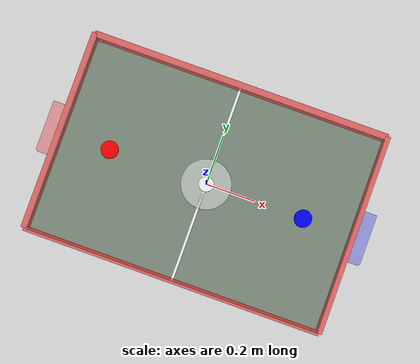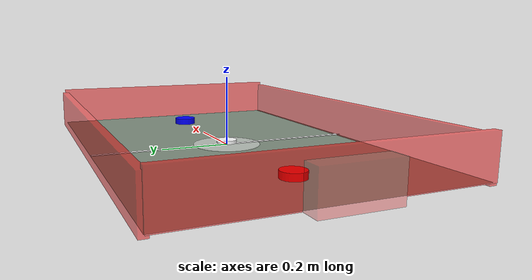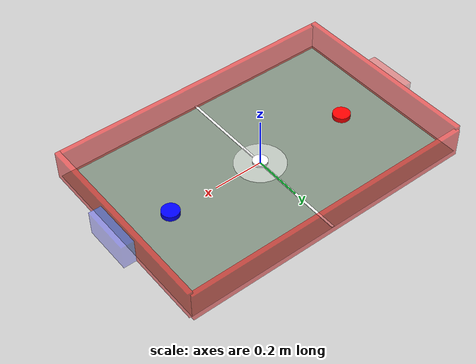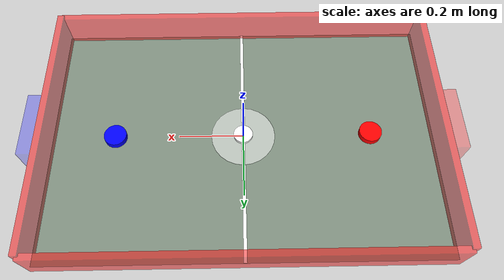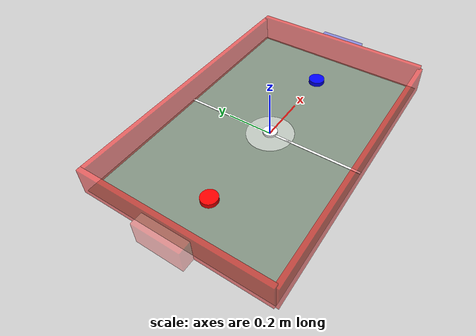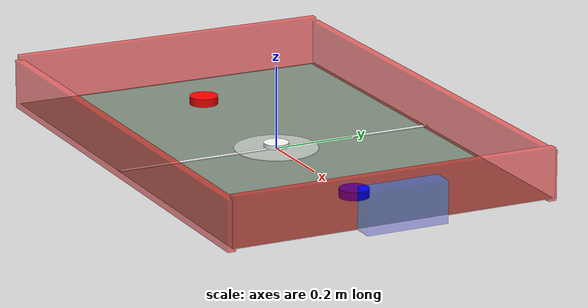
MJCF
<mujoco model="air_hockey">
    <compiler angle="radian" />
    <option timestep="0.004" gravity="0 0 0" />
    <worldbody>
        <!--airhockey table and walls -->
        <geom name="table" type="plane" pos="0 0 0" size="0.6 0.4 0.01" rgba="0.5 0.56 0.5 1" />

        <geom name="wall_left" type="box" pos="-0.6 0 0.06" size="0.01 0.4 0.06" rgba="1 0 0 0.5" condim="3" friction="1 1 0" />
        <geom name="wall_right" type="box" pos="0.6 0 0.06" size="0.01 0.4 0.06" rgba="1 0 0 0.5" condim="3" friction="1 1 0" />
        <geom name="wall_top" type="box" pos="0 0.4 0.05" size="0.6 0.01 0.06" rgba="1 0 0 0.5" condim="3" friction="1 1 0" />
        <geom name="wall_bottom" type="box" pos="0 -0.4 0.05" size="0.6 0.01 0.06" rgba="1 0 0 0.5" condim="3" friction="1 1 0" />

        <!-- markings in middle of the table(line and circle) -->
        <geom name="midline" type="box" pos="0 0 0.001" size="0.005 0.4 0.001" rgba="1 1 1 1" />
        <geom name="center_circle" type="cylinder" pos="0 0 0.001" size="0.1 0.001" rgba="1 1 1 0.5" />

        <!-- Scoring area/goal when puck hits it-->
        <geom name="goal_left" type="box" pos="-0.63 0 0.05" size="0.03 0.1 0.05" rgba="1 0 0 0.3" condim="3" friction="1 1 0" />
        <geom name="goal_right" type="box" pos="0.63 0 0.05" size="0.03 0.1 0.05" rgba="0 0 1 0.3" condim="3" friction="1 1 0" />

        <!--Puck-->
        <body name="puck" pos="0 0 0.01">
            <geom type="cylinder" size="0.03 0.005" mass="0.1" rgba="1 1 1 1" density="0.1" condim="3" friction="0.5 0.5 0" />
            <joint name="puck_joint" type="free" damping="0.2" />
        </body>

        <!--Paddle 1(left)-->
        <body name="paddle1" pos="-0.4 0 0.01">
            <geom type="cylinder" size="0.035 0.01" mass="0.2" rgba="1 0 0 1" density="0.5" condim="3" friction="1 1 0" />
            <joint name="paddle1_joint" type="free" damping="0.1" />
        </body>

        <!-- Paddle 2(right)-->
        <body name="paddle2" pos="0.4 0 0.01">
            <geom type="cylinder" size="0.035 0.01" mass="0.2" rgba="0 0 1 1" density="0.5" condim="3" friction="1 1 0" />
            <joint name="paddle2_joint" type="free" damping="0.1" />
        </body>
    </worldbody>
</mujoco>
